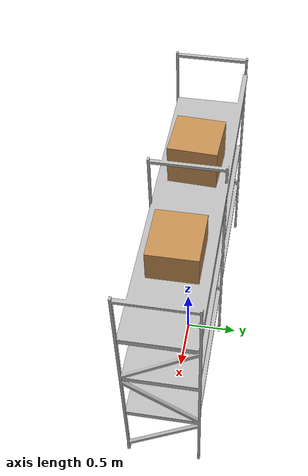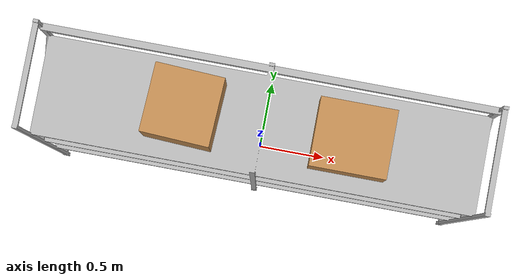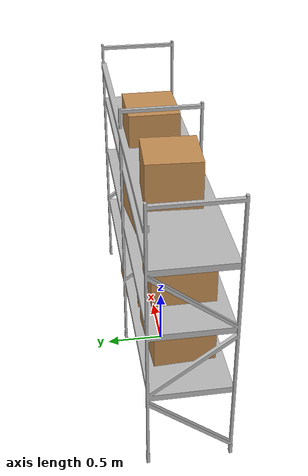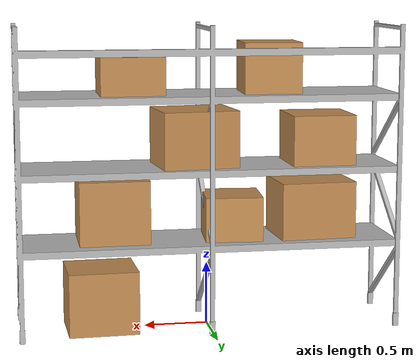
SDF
<?xml version="1.0"?>
<sdf version="1.9">
  <model name="shelf">
    <static>true</static>
    <link name="link">
      <!-- One conservative collision envelope: the LiDAR, the Nav2 map and
           physics all use it, whatever the visual detail. -->
      <collision name="collision">
        <pose>0 0 1.2 0 0 0</pose>
        <geometry><box><size>3.0 0.7 2.4</size></box></geometry>
      </collision>
      <visual name="mesh_0"><geometry><mesh><uri>meshes/shelf_0.obj</uri></mesh></geometry><material><pbr><metal><albedo_map>materials/textures/shelf_0.png</albedo_map></metal></pbr></material></visual>
      <visual name="stock_lower_1"><pose>-0.85 0.0 0.935 0 0 0.05</pose><geometry><box><size>0.6 0.5 0.45</size></box></geometry><material><diffuse>0.76 0.55 0.32 1</diffuse><pbr><metal><albedo_map>model://cargo_box/materials/textures/cardboard.png</albedo_map></metal></pbr><texrepeat>1.2 1.2</texrepeat></material></visual>
      <visual name="stock_lower_2"><pose>-0.2 0.02 0.885 0 0 -0.08</pose><geometry><box><size>0.45 0.45 0.35</size></box></geometry><material><diffuse>0.76 0.55 0.32 1</diffuse><pbr><metal><albedo_map>model://cargo_box/materials/textures/cardboard.png</albedo_map></metal></pbr><texrepeat>1.2 1.2</texrepeat></material></visual>
      <visual name="stock_lower_3"><pose>0.75 -0.02 0.960 0 0 0.0</pose><geometry><box><size>0.55 0.5 0.5</size></box></geometry><material><diffuse>0.76 0.55 0.32 1</diffuse><pbr><metal><albedo_map>model://cargo_box/materials/textures/cardboard.png</albedo_map></metal></pbr><texrepeat>1.2 1.2</texrepeat></material></visual>
      <visual name="stock_middle_1"><pose>-0.9 0.0 1.490 0 0 0.0</pose><geometry><box><size>0.5 0.5 0.4</size></box></geometry><material><diffuse>0.76 0.55 0.32 1</diffuse><pbr><metal><albedo_map>model://cargo_box/materials/textures/cardboard.png</albedo_map></metal></pbr><texrepeat>1.2 1.2</texrepeat></material></visual>
      <visual name="stock_middle_2"><pose>0.1 0.01 1.515 0 0 0.1</pose><geometry><box><size>0.6 0.5 0.45</size></box></geometry><material><diffuse>0.76 0.55 0.32 1</diffuse><pbr><metal><albedo_map>model://cargo_box/materials/textures/cardboard.png</albedo_map></metal></pbr><texrepeat>1.2 1.2</texrepeat></material></visual>
      <visual name="stock_upper_1"><pose>-0.5 0.0 2.060 0 0 -0.05</pose><geometry><box><size>0.45 0.45 0.4</size></box></geometry><material><diffuse>0.76 0.55 0.32 1</diffuse><pbr><metal><albedo_map>model://cargo_box/materials/textures/cardboard.png</albedo_map></metal></pbr><texrepeat>1.2 1.2</texrepeat></material></visual>
      <visual name="stock_upper_2"><pose>0.6 0.0 2.010 0 0 0.0</pose><geometry><box><size>0.5 0.45 0.3</size></box></geometry><material><diffuse>0.76 0.55 0.32 1</diffuse><pbr><metal><albedo_map>model://cargo_box/materials/textures/cardboard.png</albedo_map></metal></pbr><texrepeat>1.2 1.2</texrepeat></material></visual>
      <visual name="stock_floor_1"><pose>0.85 0.0 0.250 0 0 0.03</pose><geometry><box><size>0.55 0.5 0.5</size></box></geometry><material><diffuse>0.76 0.55 0.32 1</diffuse><pbr><metal><albedo_map>model://cargo_box/materials/textures/cardboard.png</albedo_map></metal></pbr><texrepeat>1.2 1.2</texrepeat></material></visual>
    </link>
  </model>
</sdf>
